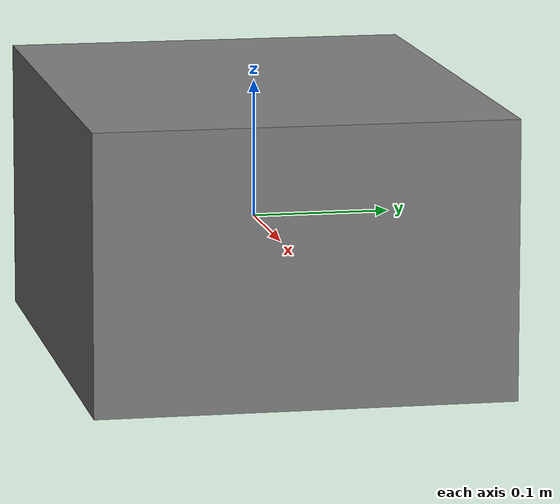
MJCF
<mujoco model="lingtu_robot_global_option_fixture">
  <compiler angle="radian" autolimits="true"/>
  <option timestep="0.001" iterations="40" solver="PGS" gravity="0 0 -9.81"/>
  <worldbody>
    <body name="base_link">
      <joint name="floating_base_joint" type="free"/>
      <geom name="body" type="box" size="0.2 0.15 0.1"/>
    </body>
  </worldbody>
</mujoco>
